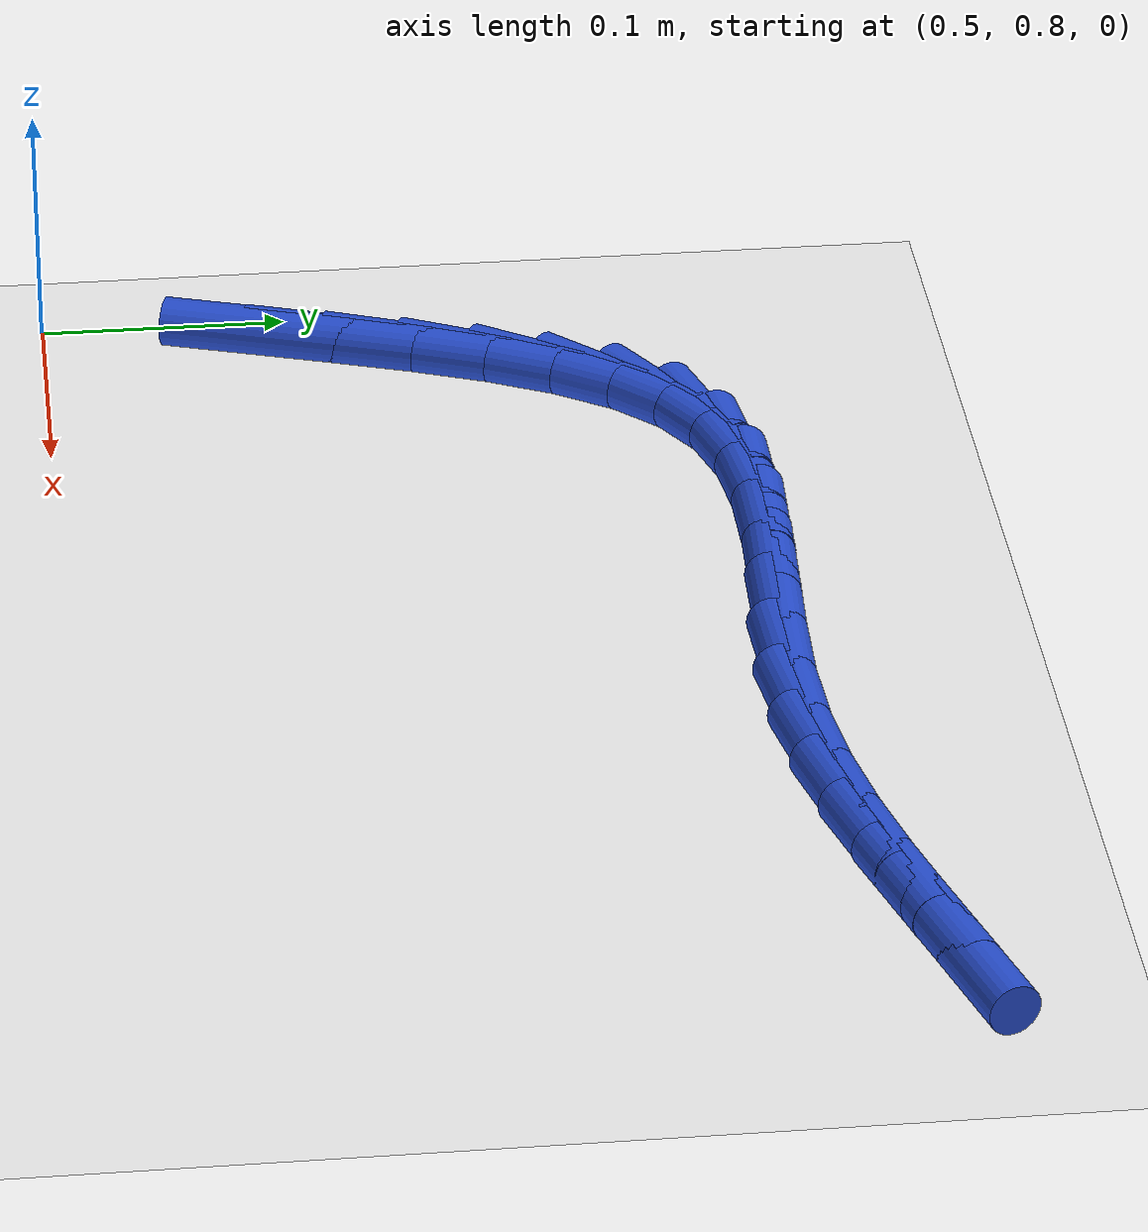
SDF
<sdf version="1.6">
 <world name="default">
  <model name="ground_plane">
   <static>1</static>
   <link name="link">
    <collision name="collision">
     <geometry><plane><normal>0 0 1</normal><size>100 100</size></plane></geometry>
     <surface><friction><ode><mu>100</mu><mu2>50</mu2></ode></friction></surface>
    </collision>
    <visual name="visual">
     <cast_shadows>0</cast_shadows>
     <geometry><plane><normal>0 0 1</normal><size>100 100</size></plane></geometry>
     <material>
      <script><uri>file://media/materials/scripts/gazebo.material</uri><name>Gazebo/WhiteGlow</name></script>
     </material>
    </visual>
   </link>
  </model>
  <model name="line">
   <link name="link_36">
    <pose>0.5236980535949607 0.8885058856735554 0.01 0 1.57 1.265144034899009</pose>
    <collision name="collision">
     <geometry><cylinder><radius>0.01</radius><length>0.08</length></cylinder></geometry>
    </collision>
    <visual name="visual">
     <material>
      <script><name>Gazebo/Blue</name><uri>file://media/materials/scripts/gazebo.material</uri></script>
     </material>
     <geometry><cylinder><radius>0.01</radius><length>0.08</length></cylinder></geometry>
    </visual>
   </link>
   <link name="link_37">
    <pose>0.5338235796063195 0.920595369875319 0.01 0 1.57 1.2520789169894673</pose>
    <collision name="collision">
     <geometry><cylinder><radius>0.01</radius><length>0.08</length></cylinder></geometry>
    </collision>
    <visual name="visual">
     <material>
      <script><name>Gazebo/Blue</name><uri>file://media/materials/scripts/gazebo.material</uri></script>
     </material>
     <geometry><cylinder><radius>0.01</radius><length>0.08</length></cylinder></geometry>
    </visual>
   </link>
   <link name="link_38">
    <pose>0.5441094413355054 0.9517678060528469 0.01 0 1.57 1.2086669883868508</pose>
    <collision name="collision">
     <geometry><cylinder><radius>0.01</radius><length>0.08</length></cylinder></geometry>
    </collision>
    <visual name="visual">
     <material>
      <script><name>Gazebo/Blue</name><uri>file://media/materials/scripts/gazebo.material</uri></script>
     </material>
     <geometry><cylinder><radius>0.01</radius><length>0.08</length></cylinder></geometry>
    </visual>
   </link>
   <link name="link_39">
    <pose>0.5552359095108762 0.9811379643041374 0.01 0 1.57 1.128171284352991</pose>
    <collision name="collision">
     <geometry><cylinder><radius>0.01</radius><length>0.08</length></cylinder></geometry>
    </collision>
    <visual name="visual">
     <material>
      <script><name>Gazebo/Blue</name><uri>file://media/materials/scripts/gazebo.material</uri></script>
     </material>
     <geometry><cylinder><radius>0.01</radius><length>0.08</length></cylinder></geometry>
    </visual>
   </link>
   <link name="link_40">
    <pose>0.5678832548607885 1.0078206147271869 0.01 0 1.57 0.9997001301491173</pose>
    <collision name="collision">
     <geometry><cylinder><radius>0.01</radius><length>0.08</length></cylinder></geometry>
    </collision>
    <visual name="visual">
     <material>
      <script><name>Gazebo/Blue</name><uri>file://media/materials/scripts/gazebo.material</uri></script>
     </material>
     <geometry><cylinder><radius>0.01</radius><length>0.08</length></cylinder></geometry>
    </visual>
   </link>
   <link name="link_41">
    <pose>0.5827317481135997 1.030930527419993 0.01 0 1.57 0.8107359534185179</pose>
    <collision name="collision">
     <geometry><cylinder><radius>0.01</radius><length>0.08</length></cylinder></geometry>
    </collision>
    <visual name="visual">
     <material>
      <script><name>Gazebo/Blue</name><uri>file://media/materials/scripts/gazebo.material</uri></script>
     </material>
     <geometry><cylinder><radius>0.01</radius><length>0.08</length></cylinder></geometry>
    </visual>
   </link>
   <link name="link_42">
    <pose>0.6004616599976669 1.0495824724805525 0.01 0 1.57 0.5587837810290953</pose>
    <collision name="collision">
     <geometry><cylinder><radius>0.01</radius><length>0.08</length></cylinder></geometry>
    </collision>
    <visual name="visual">
     <material>
      <script><name>Gazebo/Blue</name><uri>file://media/materials/scripts/gazebo.material</uri></script>
     </material>
     <geometry><cylinder><radius>0.01</radius><length>0.08</length></cylinder></geometry>
    </visual>
   </link>
   <link name="link_43">
    <pose>0.6217513968691741 1.0628940199535446 0.01 0 1.57 0.2980568340622645</pose>
    <collision name="collision">
     <geometry><cylinder><radius>0.01</radius><length>0.08</length></cylinder></geometry>
    </collision>
    <visual name="visual">
     <material>
      <script><name>Gazebo/Blue</name><uri>file://media/materials/scripts/gazebo.material</uri></script>
     </material>
     <geometry><cylinder><radius>0.01</radius><length>0.08</length></cylinder></geometry>
    </visual>
   </link>
   <link name="link_44">
    <pose>0.6468627392782944 1.0706084357935222 0.01 0 1.57 0.11531449839824548</pose>
    <collision name="collision">
     <geometry><cylinder><radius>0.01</radius><length>0.08</length></cylinder></geometry>
    </collision>
    <visual name="visual">
     <material>
      <script><name>Gazebo/Blue</name><uri>file://media/materials/scripts/gazebo.material</uri></script>
     </material>
     <geometry><cylinder><radius>0.01</radius><length>0.08</length></cylinder></geometry>
    </visual>
   </link>
   <link name="link_45">
    <pose>0.6751171955826861 1.0738811031511761 0.01 0 1.57 0.005880650860963544</pose>
    <collision name="collision">
     <geometry><cylinder><radius>0.01</radius><length>0.08</length></cylinder></geometry>
    </collision>
    <visual name="visual">
     <material>
      <script><name>Gazebo/Blue</name><uri>file://media/materials/scripts/gazebo.material</uri></script>
     </material>
     <geometry><cylinder><radius>0.01</radius><length>0.08</length></cylinder></geometry>
    </visual>
   </link>
   <link name="link_46">
    <pose>0.7057073702022806 1.0740609953615754 0.01 0 1.57 -0.04865344051061675</pose>
    <collision name="collision">
     <geometry><cylinder><radius>0.01</radius><length>0.08</length></cylinder></geometry>
    </collision>
    <visual name="visual">
     <material>
      <script><name>Gazebo/Blue</name><uri>file://media/materials/scripts/gazebo.material</uri></script>
     </material>
     <geometry><cylinder><radius>0.01</radius><length>0.08</length></cylinder></geometry>
    </visual>
   </link>
   <link name="link_47">
    <pose>0.7378258675570086 1.0724970857597906 0.01 0 1.57 -0.05957534966952704</pose>
    <collision name="collision">
     <geometry><cylinder><radius>0.01</radius><length>0.08</length></cylinder></geometry>
    </collision>
    <visual name="visual">
     <material>
      <script><name>Gazebo/Blue</name><uri>file://media/materials/scripts/gazebo.material</uri></script>
     </material>
     <geometry><cylinder><radius>0.01</radius><length>0.08</length></cylinder></geometry>
    </visual>
   </link>
   <link name="link_48">
    <pose>0.7706652920668017 1.070538347680891 0.01 0 1.57 -0.030662220794457115</pose>
    <collision name="collision">
     <geometry><cylinder><radius>0.01</radius><length>0.08</length></cylinder></geometry>
    </collision>
    <visual name="visual">
     <material>
      <script><name>Gazebo/Blue</name><uri>file://media/materials/scripts/gazebo.material</uri></script>
     </material>
     <geometry><cylinder><radius>0.01</radius><length>0.08</length></cylinder></geometry>
    </visual>
   </link>
   <link name="link_49">
    <pose>0.8034182481515902 1.0695337544599464 0.01 0 1.57 0.039172706857328994</pose>
    <collision name="collision">
     <geometry><cylinder><radius>0.01</radius><length>0.08</length></cylinder></geometry>
    </collision>
    <visual name="visual">
     <material>
      <script><name>Gazebo/Blue</name><uri>file://media/materials/scripts/gazebo.material</uri></script>
     </material>
     <geometry><cylinder><radius>0.01</radius><length>0.08</length></cylinder></geometry>
    </visual>
   </link>
   <link name="link_50">
    <pose>0.8353042205179027 1.0707834535952234 0.01 0 1.57 0.1245799160838165</pose>
    <collision name="collision">
     <geometry><cylinder><radius>0.01</radius><length>0.08</length></cylinder></geometry>
    </collision>
    <visual name="visual">
     <material>
      <script><name>Gazebo/Blue</name><uri>file://media/materials/scripts/gazebo.material</uri></script>
     </material>
     <geometry><cylinder><radius>0.01</radius><length>0.08</length></cylinder></geometry>
    </visual>
   </link>
   <link name="link_51">
    <pose>0.8660666935266311 1.0746357901733288 0.01 0 1.57 0.1963043708164726</pose>
    <collision name="collision">
     <geometry><cylinder><radius>0.01</radius><length>0.08</length></cylinder></geometry>
    </collision>
    <visual name="visual">
     <material>
      <script><name>Gazebo/Blue</name><uri>file://media/materials/scripts/gazebo.material</uri></script>
     </material>
     <geometry><cylinder><radius>0.01</radius><length>0.08</length></cylinder></geometry>
    </visual>
   </link>
   <link name="link_52">
    <pose>0.8959255929759979 1.0805736924713536 0.01 0 1.57 0.2506689041640947</pose>
    <collision name="collision">
     <geometry><cylinder><radius>0.01</radius><length>0.08</length></cylinder></geometry>
    </collision>
    <visual name="visual">
     <material>
      <script><name>Gazebo/Blue</name><uri>file://media/materials/scripts/gazebo.material</uri></script>
     </material>
     <geometry><cylinder><radius>0.01</radius><length>0.08</length></cylinder></geometry>
    </visual>
   </link>
   <link name="link_53">
    <pose>0.92511818630646 1.0880485890950398 0.01 0 1.57 0.28616184921676585</pose>
    <collision name="collision">
     <geometry><cylinder><radius>0.01</radius><length>0.08</length></cylinder></geometry>
    </collision>
    <visual name="visual">
     <material>
      <script><name>Gazebo/Blue</name><uri>file://media/materials/scripts/gazebo.material</uri></script>
     </material>
     <geometry><cylinder><radius>0.01</radius><length>0.08</length></cylinder></geometry>
    </visual>
   </link>
   <link name="link_54">
    <pose>0.9538817409584741 1.0965119086501285 0.01 0 1.57 0.3020712178301751</pose>
    <collision name="collision">
     <geometry><cylinder><radius>0.01</radius><length>0.08</length></cylinder></geometry>
    </collision>
    <visual name="visual">
     <material>
      <script><name>Gazebo/Blue</name><uri>file://media/materials/scripts/gazebo.material</uri></script>
     </material>
     <geometry><cylinder><radius>0.01</radius><length>0.08</length></cylinder></geometry>
    </visual>
   </link>
   <link name="link_55">
    <pose>0.982453524372497 1.1054150797423623 0.01 0 1.57 0.2981520466221401</pose>
    <collision name="collision">
     <geometry><cylinder><radius>0.01</radius><length>0.08</length></cylinder></geometry>
    </collision>
    <visual name="visual">
     <material>
      <script><name>Gazebo/Blue</name><uri>file://media/materials/scripts/gazebo.material</uri></script>
     </material>
     <geometry><cylinder><radius>0.01</radius><length>0.08</length></cylinder></geometry>
    </visual>
   </link>
  </model>
 </world>
</sdf>
